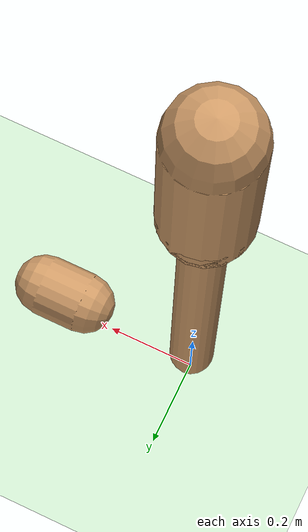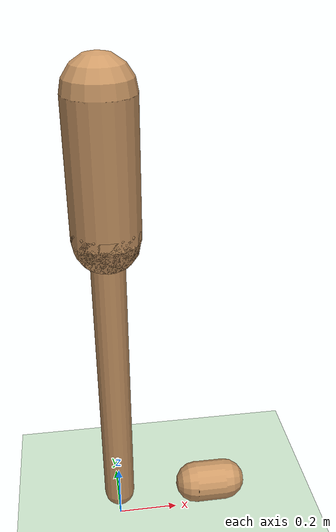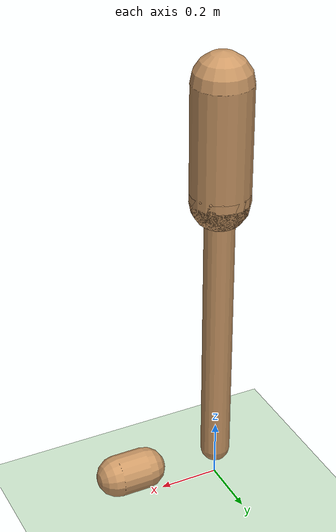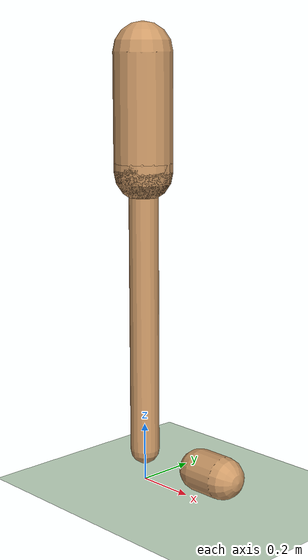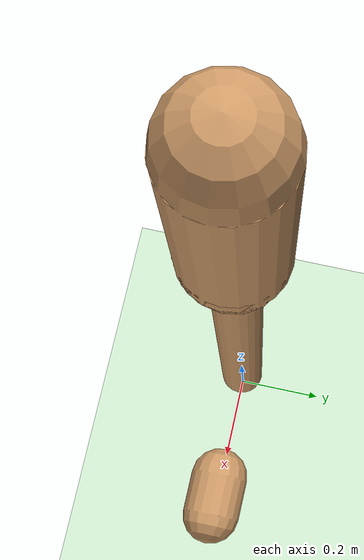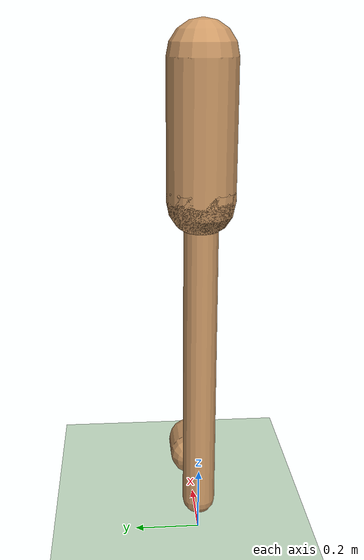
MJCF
<mujoco model="hopper">
    <compiler angle="degree" inertiafromgeom="true"/>
    <default>
      <joint armature="1" damping="1" limited="true"/>
      <geom conaffinity="1" condim="1" contype="1" margin="0.001" material="geom" rgba="0.8 0.6 .4 1" solimp=".8 .8 .01" solref=".02 1"/>
      <motor ctrllimited="true" ctrlrange="-.4 .4"/>
    </default>
    <option integrator="RK4" timestep="0.002"/>

    <worldbody>
      <light cutoff="100" diffuse="1 1 1" dir="-0 0 -1.3" directional="true" exponent="1" pos="0 0 1.3" specular=".1 .1 .1"/>
      <geom conaffinity="1" condim="3" name="floor" pos="0 0 0" rgba="0.8 0.9 0.8 1" size="20 20 .125" type="plane" material="MatPlane"/>
      <body name="torso">
        <camera name="track" mode="trackcom" pos="0 -3 -0.25" xyaxes="1 0 0 0 0 1"/>
        <joint armature="0" axis="1 0 0" damping="0" limited="false" name="ignore1" pos="0 0 0" stiffness="0" type="slide"/>
        <joint armature="0" axis="0 0 1" damping="0" limited="false" name="ignore2" pos="0 0 0" ref="1.25" stiffness="0" type="slide"/>
        <joint armature="0" axis="0 1 0" damping="0" limited="false" name="ignore3" pos="0 0 0" stiffness="0" type="hinge"/>
        <geom fromto="0 0 1.4599999997764825 0 0 1.0699999997764826" name="torso_geom" size="0.09842068254947663" type="capsule" friction="0.9"/>
        <body name="thigh">
          <joint axis="0 -1 0" name="thigh_joint" pos="0 0 1.0699999997764826" range="-150 0" type="hinge"/>
          <geom fromto="0 0 1.0699999997764826 0 0 1.1" name="thigh_geom" size="0.09842068254947663" type="capsule" friction="0.9"/>
          <body name="leg">
            <joint axis="0 -1 0" name="leg_joint" pos="0 0 1.1" range="-150 0" type="hinge"/>
            <geom fromto="0 0 1.1 0 0 0.10999999977648259" name="leg_geom" size="0.04999999977648258" type="capsule" friction="0.9"/>
            <body name="foot">
              <joint axis="0 -1 0" name="foot_joint" pos="0 0 0.10999999977648259" range="-45 45" type="hinge"/>
              <geom fromto="0.37 0 0.10999999977648259 0.2699999997764826 0 0.10999999977648259" name="foot_geom" size="0.06999999977648258" type="capsule" friction="2.0"/>
            </body>
          </body>
        </body>
      </body>
    </worldbody>
    <actuator>
      <motor ctrllimited="true" ctrlrange="-1.0 1.0" gear="200.0" joint="thigh_joint"/>
      <motor ctrllimited="true" ctrlrange="-1.0 1.0" gear="200.0" joint="leg_joint"/>
      <motor ctrllimited="true" ctrlrange="-1.0 1.0" gear="200.0" joint="foot_joint"/>
    </actuator>
      <asset>
        <texture type="skybox" builtin="gradient" rgb1=".4 .5 .6" rgb2="0 0 0"
            width="100" height="100"/>
        <texture builtin="flat" height="1278" mark="cross" markrgb="1 1 1" name="texgeom" random="0.01" rgb1="0.8 0.6 0.4" rgb2="0.8 0.6 0.4" type="cube" width="127"/>
        <texture builtin="checker" height="100" name="texplane" rgb1="0 0 0" rgb2="0.8 0.8 0.8" type="2d" width="100"/>
        <material name="MatPlane" reflectance="0.5" shininess="1" specular="1" texrepeat="60 60" texture="texplane"/>
        <material name="geom" texture="texgeom" texuniform="true"/>
      </asset>
  </mujoco>
